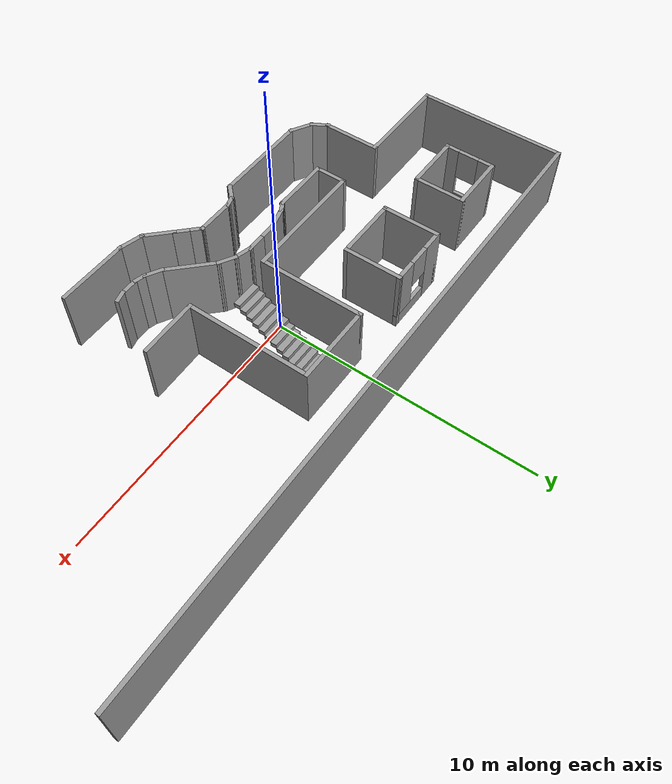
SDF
<sdf version="1.7">
 <model name="parcial_este_sii">
  <pose>1.2832 -0.231354 0 0 -0 0</pose>
  <link name="Stairs_0">
   <visual name="Stairs_0_Visual_0">
    <pose>-0.212158 3.06479 0.083333 0 -0 0</pose>
    <geometry><box><size>1 0.233333 0.166667</size></box></geometry>
    <material>
     <script><uri>file://media/materials/scripts/gazebo.material</uri><name>Gazebo/Grey</name></script>
     <ambient>1 1 1 1</ambient>
    </material>
    <meta><layer>0</layer></meta>
   </visual>
   <collision name="Stairs_0_Collision_0">
    <geometry><box><size>1 0.233333 0.166667</size></box></geometry>
    <pose>-0.212158 3.06479 0.083333 0 -0 0</pose>
   </collision>
   <visual name="Stairs_0_Visual_1">
    <pose>-0.212158 2.83145 0.25 0 -0 0</pose>
    <geometry><box><size>1 0.233333 0.166667</size></box></geometry>
    <material>
     <script><uri>file://media/materials/scripts/gazebo.material</uri><name>Gazebo/Grey</name></script>
     <ambient>1 1 1 1</ambient>
    </material>
    <meta><layer>0</layer></meta>
   </visual>
   <collision name="Stairs_0_Collision_1">
    <geometry><box><size>1 0.233333 0.166667</size></box></geometry>
    <pose>-0.212158 2.83145 0.25 0 -0 0</pose>
   </collision>
   <visual name="Stairs_0_Visual_2">
    <pose>-0.212158 2.59812 0.416667 0 -0 0</pose>
    <geometry><box><size>1 0.233333 0.166667</size></box></geometry>
    <material>
     <script><uri>file://media/materials/scripts/gazebo.material</uri><name>Gazebo/Grey</name></script>
     <ambient>1 1 1 1</ambient>
    </material>
    <meta><layer>0</layer></meta>
   </visual>
   <collision name="Stairs_0_Collision_2">
    <geometry><box><size>1 0.233333 0.166667</size></box></geometry>
    <pose>-0.212158 2.59812 0.416667 0 -0 0</pose>
   </collision>
   <visual name="Stairs_0_Visual_3">
    <pose>-0.212158 2.36479 0.583333 0 -0 0</pose>
    <geometry><box><size>1 0.233333 0.166667</size></box></geometry>
    <material>
     <script><uri>file://media/materials/scripts/gazebo.material</uri><name>Gazebo/Grey</name></script>
     <ambient>1 1 1 1</ambient>
    </material>
    <meta><layer>0</layer></meta>
   </visual>
   <collision name="Stairs_0_Collision_3">
    <geometry><box><size>1 0.233333 0.166667</size></box></geometry>
    <pose>-0.212158 2.36479 0.583333 0 -0 0</pose>
   </collision>
   <visual name="Stairs_0_Visual_4">
    <pose>-0.212158 2.13145 0.75 0 -0 0</pose>
    <geometry><box><size>1 0.233333 0.166667</size></box></geometry>
    <material>
     <script><uri>file://media/materials/scripts/gazebo.material</uri><name>Gazebo/Grey</name></script>
     <ambient>1 1 1 1</ambient>
    </material>
    <meta><layer>0</layer></meta>
   </visual>
   <collision name="Stairs_0_Collision_4">
    <geometry><box><size>1 0.233333 0.166667</size></box></geometry>
    <pose>-0.212158 2.13145 0.75 0 -0 0</pose>
   </collision>
   <visual name="Stairs_0_Visual_5">
    <pose>-0.212158 1.89812 0.916667 0 -0 0</pose>
    <geometry><box><size>1 0.233333 0.166667</size></box></geometry>
    <material>
     <script><uri>file://media/materials/scripts/gazebo.material</uri><name>Gazebo/Grey</name></script>
     <ambient>1 1 1 1</ambient>
    </material>
    <meta><layer>0</layer></meta>
   </visual>
   <collision name="Stairs_0_Collision_5">
    <geometry><box><size>1 0.233333 0.166667</size></box></geometry>
    <pose>-0.212158 1.89812 0.916667 0 -0 0</pose>
   </collision>
   <visual name="Stairs_0_Visual_6">
    <pose>-0.212158 1.66479 1.08333 0 -0 0</pose>
    <geometry><box><size>1 0.233333 0.166667</size></box></geometry>
    <material>
     <script><uri>file://media/materials/scripts/gazebo.material</uri><name>Gazebo/Grey</name></script>
     <ambient>1 1 1 1</ambient>
    </material>
    <meta><layer>0</layer></meta>
   </visual>
   <collision name="Stairs_0_Collision_6">
    <geometry><box><size>1 0.233333 0.166667</size></box></geometry>
    <pose>-0.212158 1.66479 1.08333 0 -0 0</pose>
   </collision>
   <visual name="Stairs_0_Visual_7">
    <pose>-0.212158 1.43145 1.25 0 -0 0</pose>
    <geometry><box><size>1 0.233333 0.166667</size></box></geometry>
    <material>
     <script><uri>file://media/materials/scripts/gazebo.material</uri><name>Gazebo/Grey</name></script>
     <ambient>1 1 1 1</ambient>
    </material>
    <meta><layer>0</layer></meta>
   </visual>
   <collision name="Stairs_0_Collision_7">
    <geometry><box><size>1 0.233333 0.166667</size></box></geometry>
    <pose>-0.212158 1.43145 1.25 0 -0 0</pose>
   </collision>
   <visual name="Stairs_0_Visual_8">
    <pose>-0.212158 1.19812 1.41667 0 -0 0</pose>
    <geometry><box><size>1 0.233333 0.166667</size></box></geometry>
    <material>
     <script><uri>file://media/materials/scripts/gazebo.material</uri><name>Gazebo/Grey</name></script>
     <ambient>1 1 1 1</ambient>
    </material>
    <meta><layer>0</layer></meta>
   </visual>
   <collision name="Stairs_0_Collision_8">
    <geometry><box><size>1 0.233333 0.166667</size></box></geometry>
    <pose>-0.212158 1.19812 1.41667 0 -0 0</pose>
   </collision>
   <visual name="Stairs_0_Visual_9">
    <pose>-0.212158 0.964787 1.58333 0 -0 0</pose>
    <geometry><box><size>1 0.233333 0.166667</size></box></geometry>
    <material>
     <script><uri>file://media/materials/scripts/gazebo.material</uri><name>Gazebo/Grey</name></script>
     <ambient>1 1 1 1</ambient>
    </material>
    <meta><layer>0</layer></meta>
   </visual>
   <collision name="Stairs_0_Collision_9">
    <geometry><box><size>1 0.233333 0.166667</size></box></geometry>
    <pose>-0.212158 0.964787 1.58333 0 -0 0</pose>
   </collision>
   <visual name="Stairs_0_Visual_10">
    <pose>-0.212158 0.731454 1.75 0 -0 0</pose>
    <geometry><box><size>1 0.233333 0.166667</size></box></geometry>
    <material>
     <script><uri>file://media/materials/scripts/gazebo.material</uri><name>Gazebo/Grey</name></script>
     <ambient>1 1 1 1</ambient>
    </material>
    <meta><layer>0</layer></meta>
   </visual>
   <collision name="Stairs_0_Collision_10">
    <geometry><box><size>1 0.233333 0.166667</size></box></geometry>
    <pose>-0.212158 0.731454 1.75 0 -0 0</pose>
   </collision>
   <visual name="Stairs_0_Visual_11">
    <pose>-0.212158 0.49812 1.91667 0 -0 0</pose>
    <geometry><box><size>1 0.233333 0.166667</size></box></geometry>
    <material>
     <script><uri>file://media/materials/scripts/gazebo.material</uri><name>Gazebo/Grey</name></script>
     <ambient>1 1 1 1</ambient>
    </material>
    <meta><layer>0</layer></meta>
   </visual>
   <collision name="Stairs_0_Collision_11">
    <geometry><box><size>1 0.233333 0.166667</size></box></geometry>
    <pose>-0.212158 0.49812 1.91667 0 -0 0</pose>
   </collision>
   <visual name="Stairs_0_Visual_12">
    <pose>-0.212158 0.264787 2.08333 0 -0 0</pose>
    <geometry><box><size>1 0.233333 0.166667</size></box></geometry>
    <material>
     <script><uri>file://media/materials/scripts/gazebo.material</uri><name>Gazebo/Grey</name></script>
     <ambient>1 1 1 1</ambient>
    </material>
    <meta><layer>0</layer></meta>
   </visual>
   <collision name="Stairs_0_Collision_12">
    <geometry><box><size>1 0.233333 0.166667</size></box></geometry>
    <pose>-0.212158 0.264787 2.08333 0 -0 0</pose>
   </collision>
   <visual name="Stairs_0_Visual_13">
    <pose>-0.212158 0.031454 2.25 0 -0 0</pose>
    <geometry><box><size>1 0.233333 0.166667</size></box></geometry>
    <material>
     <script><uri>file://media/materials/scripts/gazebo.material</uri><name>Gazebo/Grey</name></script>
     <ambient>1 1 1 1</ambient>
    </material>
    <meta><layer>0</layer></meta>
   </visual>
   <collision name="Stairs_0_Collision_13">
    <geometry><box><size>1 0.233333 0.166667</size></box></geometry>
    <pose>-0.212158 0.031454 2.25 0 -0 0</pose>
   </collision>
   <visual name="Stairs_0_Visual_14">
    <pose>-0.212158 -0.20188 2.41667 0 -0 0</pose>
    <geometry><box><size>1 0.233333 0.166667</size></box></geometry>
    <material>
     <script><uri>file://media/materials/scripts/gazebo.material</uri><name>Gazebo/Grey</name></script>
     <ambient>1 1 1 1</ambient>
    </material>
    <meta><layer>0</layer></meta>
   </visual>
   <collision name="Stairs_0_Collision_14">
    <geometry><box><size>1 0.233333 0.166667</size></box></geometry>
    <pose>-0.212158 -0.20188 2.41667 0 -0 0</pose>
   </collision>
  </link>
  <link name="Wall_100">
   <collision name="Wall_100_Collision">
    <geometry><box><size>0.75 0.15 2.5</size></box></geometry>
    <pose>0 0 1.25 0 -0 0</pose>
   </collision>
   <visual name="Wall_100_Visual">
    <pose>0 0 1.25 0 -0 0</pose>
    <geometry><box><size>0.75 0.15 2.5</size></box></geometry>
    <material>
     <script><uri>file://media/materials/scripts/gazebo.material</uri><name>Gazebo/Grey</name></script>
     <ambient>1 1 1 1</ambient>
    </material>
    <meta><layer>0</layer></meta>
   </visual>
   <pose>-1.171 -3.69295 0 0 -0 -0.785398</pose>
  </link>
  <link name="Wall_101">
   <collision name="Wall_101_Collision">
    <geometry><box><size>1.25 0.15 2.5</size></box></geometry>
    <pose>0 0 1.25 0 -0 0</pose>
   </collision>
   <visual name="Wall_101_Visual">
    <pose>0 0 1.25 0 -0 0</pose>
    <geometry><box><size>1.25 0.15 2.5</size></box></geometry>
    <material>
     <script><uri>file://media/materials/scripts/gazebo.material</uri><name>Gazebo/Grey</name></script>
     <ambient>1 1 1 1</ambient>
    </material>
    <meta><layer>0</layer></meta>
   </visual>
   <pose>-0.569956 -4.294 0 0 -0 -0.785398</pose>
  </link>
  <link name="Wall_102">
   <collision name="Wall_102_Collision">
    <geometry><box><size>1 0.15 2.5</size></box></geometry>
    <pose>0 0 1.25 0 -0 0</pose>
   </collision>
   <visual name="Wall_102_Visual">
    <pose>0 0 1.25 0 -0 0</pose>
    <geometry><box><size>1 0.15 2.5</size></box></geometry>
    <material>
     <script><uri>file://media/materials/scripts/gazebo.material</uri><name>Gazebo/Grey</name></script>
     <ambient>1 1 1 1</ambient>
    </material>
    <meta><layer>0</layer></meta>
   </visual>
   <pose>0.229471 -4.7929 0 0 -0 -0.261799</pose>
  </link>
  <link name="Wall_103">
   <collision name="Wall_103_Collision">
    <geometry><box><size>2.75 0.15 2.5</size></box></geometry>
    <pose>0 0 1.25 0 -0 0</pose>
   </collision>
   <visual name="Wall_103_Visual">
    <pose>0 0 1.25 0 -0 0</pose>
    <geometry><box><size>2.75 0.15 2.5</size></box></geometry>
    <material>
     <script><uri>file://media/materials/scripts/gazebo.material</uri><name>Gazebo/Grey</name></script>
     <ambient>1 1 1 1</ambient>
    </material>
    <meta><layer>0</layer></meta>
   </visual>
   <pose>1.93999 -4.9029 0 0 -0 0</pose>
  </link>
  <link name="Wall_118">
   <collision name="Wall_118_Collision">
    <geometry><box><size>24.0772 0.15 2.5</size></box></geometry>
    <pose>0 0 1.25 0 -0 0</pose>
   </collision>
   <visual name="Wall_118_Visual">
    <pose>0 0 1.25 0 -0 0</pose>
    <geometry><box><size>24.0772 0.15 2.5</size></box></geometry>
    <material>
     <script><uri>file://media/materials/scripts/gazebo.material</uri><name>Gazebo/Grey</name></script>
     <ambient>1 1 1 1</ambient>
    </material>
    <meta><layer>0</layer></meta>
   </visual>
   <pose>-0.01548 4.91334 0 0 -0 -3.14018</pose>
  </link>
  <link name="Wall_48">
   <collision name="Wall_48_Collision">
    <geometry><box><size>0.5 0.15 2.5</size></box></geometry>
    <pose>0 0 1.25 0 -0 0</pose>
   </collision>
   <visual name="Wall_48_Visual">
    <pose>0 0 1.25 0 -0 0</pose>
    <geometry><box><size>0.5 0.15 2.5</size></box></geometry>
    <material>
     <script><uri>file://media/materials/scripts/gazebo.material</uri><name>Gazebo/Grey</name></script>
     <ambient>1 1 1 1</ambient>
    </material>
    <meta><layer>0</layer></meta>
   </visual>
   <pose>2.18494 -3.46395 0 0 -0 -2.87979</pose>
  </link>
  <link name="Wall_49">
   <collision name="Wall_49_Collision">
    <geometry><box><size>0.75 0.15 2.5</size></box></geometry>
    <pose>0 0 1.25 0 -0 0</pose>
   </collision>
   <visual name="Wall_49_Visual">
    <pose>0 0 1.25 0 -0 0</pose>
    <geometry><box><size>0.75 0.15 2.5</size></box></geometry>
    <material>
     <script><uri>file://media/materials/scripts/gazebo.material</uri><name>Gazebo/Grey</name></script>
     <ambient>1 1 1 1</ambient>
    </material>
    <meta><layer>0</layer></meta>
   </visual>
   <pose>1.7159 -3.50924 0 0 -0 3.14159</pose>
  </link>
  <link name="Wall_50">
   <collision name="Wall_50_Collision">
    <geometry><box><size>0.5 0.15 2.5</size></box></geometry>
    <pose>0 0 1.25 0 -0 0</pose>
   </collision>
   <visual name="Wall_50_Visual">
    <pose>0 0 1.25 0 -0 0</pose>
    <geometry><box><size>0.5 0.15 2.5</size></box></geometry>
    <material>
     <script><uri>file://media/materials/scripts/gazebo.material</uri><name>Gazebo/Grey</name></script>
     <ambient>1 1 1 1</ambient>
    </material>
    <meta><layer>0</layer></meta>
   </visual>
   <pose>1.24686 -3.46395 0 0 -0 2.87979</pose>
  </link>
  <link name="Wall_51">
   <collision name="Wall_51_Collision">
    <geometry><box><size>0.75 0.15 2.5</size></box></geometry>
    <pose>0 0 1.25 0 -0 0</pose>
   </collision>
   <visual name="Wall_51_Visual">
    <pose>0 0 1.25 0 -0 0</pose>
    <geometry><box><size>0.75 0.15 2.5</size></box></geometry>
    <material>
     <script><uri>file://media/materials/scripts/gazebo.material</uri><name>Gazebo/Grey</name></script>
     <ambient>1 1 1 1</ambient>
    </material>
    <meta><layer>0</layer></meta>
   </visual>
   <pose>0.818017 -3.26865 0 0 -0 2.61799</pose>
  </link>
  <link name="Wall_52">
   <collision name="Wall_52_Collision">
    <geometry><box><size>2 0.15 2.5</size></box></geometry>
    <pose>0 0 1.25 0 -0 0</pose>
   </collision>
   <visual name="Wall_52_Visual">
    <pose>0 0 1.25 0 -0 0</pose>
    <geometry><box><size>2 0.15 2.5</size></box></geometry>
    <material>
     <script><uri>file://media/materials/scripts/gazebo.material</uri><name>Gazebo/Grey</name></script>
     <ambient>1 1 1 1</ambient>
    </material>
    <meta><layer>0</layer></meta>
   </visual>
   <pose>-0.095864 -2.46458 0 0 -0 2.35619</pose>
  </link>
  <link name="Wall_55">
   <collision name="Wall_55_Collision">
    <geometry><box><size>0.75 0.15 2.5</size></box></geometry>
    <pose>0 0 1.25 0 -0 0</pose>
   </collision>
   <visual name="Wall_55_Visual">
    <pose>0 0 1.25 0 -0 0</pose>
    <geometry><box><size>0.75 0.15 2.5</size></box></geometry>
    <material>
     <script><uri>file://media/materials/scripts/gazebo.material</uri><name>Gazebo/Grey</name></script>
     <ambient>1 1 1 1</ambient>
    </material>
    <meta><layer>0</layer></meta>
   </visual>
   <pose>-1.00974 -1.66051 0 0 -0 2.61799</pose>
  </link>
  <link name="Wall_56">
   <collision name="Wall_56_Collision">
    <geometry><box><size>0.75 0.15 2.5</size></box></geometry>
    <pose>0 0 1.25 0 -0 0</pose>
   </collision>
   <visual name="Wall_56_Visual">
    <pose>0 0 1.25 0 -0 0</pose>
    <geometry><box><size>0.75 0.15 2.5</size></box></geometry>
    <material>
     <script><uri>file://media/materials/scripts/gazebo.material</uri><name>Gazebo/Grey</name></script>
     <ambient>1 1 1 1</ambient>
    </material>
    <meta><layer>0</layer></meta>
   </visual>
   <pose>-1.55933 -1.43286 0 0 -0 2.87979</pose>
  </link>
  <link name="Wall_57">
   <collision name="Wall_57_Collision">
    <geometry><box><size>0.75 0.15 2.5</size></box></geometry>
    <pose>0 0 1.25 0 -0 0</pose>
   </collision>
   <visual name="Wall_57_Visual">
    <pose>0 0 1.25 0 -0 0</pose>
    <geometry><box><size>0.75 0.15 2.5</size></box></geometry>
    <material>
     <script><uri>file://media/materials/scripts/gazebo.material</uri><name>Gazebo/Grey</name></script>
     <ambient>1 1 1 1</ambient>
    </material>
    <meta><layer>0</layer></meta>
   </visual>
   <pose>-2.14911 -1.35522 0 0 -0 3.14159</pose>
  </link>
  <link name="Wall_58">
   <collision name="Wall_58_Collision">
    <geometry><box><size>0.75 0.15 2.5</size></box></geometry>
    <pose>0 0 1.25 0 -0 0</pose>
   </collision>
   <visual name="Wall_58_Visual">
    <pose>0 0 1.25 0 -0 0</pose>
    <geometry><box><size>0.75 0.15 2.5</size></box></geometry>
    <material>
     <script><uri>file://media/materials/scripts/gazebo.material</uri><name>Gazebo/Grey</name></script>
     <ambient>1 1 1 1</ambient>
    </material>
    <meta><layer>0</layer></meta>
   </visual>
   <pose>-2.74911 -1.35522 0 0 -0 3.14159</pose>
  </link>
  <link name="Wall_59">
   <collision name="Wall_59_Collision">
    <geometry><box><size>1 0.15 2.5</size></box></geometry>
    <pose>0 0 1.25 0 -0 0</pose>
   </collision>
   <visual name="Wall_59_Visual">
    <pose>0 0 1.25 0 -0 0</pose>
    <geometry><box><size>1 0.15 2.5</size></box></geometry>
    <material>
     <script><uri>file://media/materials/scripts/gazebo.material</uri><name>Gazebo/Grey</name></script>
     <ambient>1 1 1 1</ambient>
    </material>
    <meta><layer>0</layer></meta>
   </visual>
   <pose>-3.45963 -1.46521 0 0 -0 -2.87979</pose>
  </link>
  <link name="Wall_60">
   <collision name="Wall_60_Collision">
    <geometry><box><size>0.5 0.15 2.5</size></box></geometry>
    <pose>0 0 1.25 0 -0 0</pose>
   </collision>
   <visual name="Wall_60_Visual">
    <pose>0 0 1.25 0 -0 0</pose>
    <geometry><box><size>0.5 0.15 2.5</size></box></geometry>
    <material>
     <script><uri>file://media/materials/scripts/gazebo.material</uri><name>Gazebo/Grey</name></script>
     <ambient>1 1 1 1</ambient>
    </material>
    <meta><layer>0</layer></meta>
   </visual>
   <pose>-4.0217 -1.66271 0 0 -0 -2.61799</pose>
  </link>
  <link name="Wall_61">
   <collision name="Wall_61_Collision">
    <geometry><box><size>2.25 0.15 2.5</size></box></geometry>
    <pose>0 0 1.25 0 -0 0</pose>
   </collision>
   <visual name="Wall_61_Visual">
    <pose>0 0 1.25 0 -0 0</pose>
    <geometry><box><size>2.25 0.15 2.5</size></box></geometry>
    <material>
     <script><uri>file://media/materials/scripts/gazebo.material</uri><name>Gazebo/Grey</name></script>
     <ambient>1 1 1 1</ambient>
    </material>
    <meta><layer>0</layer></meta>
   </visual>
   <pose>-5.22325 -1.75021 0 0 -0 3.14159</pose>
  </link>
  <link name="Wall_62">
   <collision name="Wall_62_Collision">
    <geometry><box><size>1.25 0.15 2.5</size></box></geometry>
    <pose>0 0 1.25 0 -0 0</pose>
   </collision>
   <visual name="Wall_62_Visual">
    <pose>0 0 1.25 0 -0 0</pose>
    <geometry><box><size>1.25 0.15 2.5</size></box></geometry>
    <material>
     <script><uri>file://media/materials/scripts/gazebo.material</uri><name>Gazebo/Grey</name></script>
     <ambient>1 1 1 1</ambient>
    </material>
    <meta><layer>0</layer></meta>
   </visual>
   <pose>-6.27325 -1.20021 0 0 -0 1.5708</pose>
  </link>
  <link name="Wall_63">
   <collision name="Wall_63_Collision">
    <geometry><box><size>4.75 0.15 2.5</size></box></geometry>
    <pose>0 0 1.25 0 -0 0</pose>
   </collision>
   <visual name="Wall_63_Visual">
    <pose>0 0 1.25 0 -0 0</pose>
    <geometry><box><size>4.75 0.15 2.5</size></box></geometry>
    <material>
     <script><uri>file://media/materials/scripts/gazebo.material</uri><name>Gazebo/Grey</name></script>
     <ambient>1 1 1 1</ambient>
    </material>
    <meta><layer>0</layer></meta>
   </visual>
   <pose>-3.97325 -0.650212 0 0 -0 0</pose>
  </link>
  <link name="Wall_65">
   <collision name="Wall_65_Collision">
    <geometry><box><size>4 0.15 2.5</size></box></geometry>
    <pose>0 0 1.25 0 -0 0</pose>
   </collision>
   <visual name="Wall_65_Visual">
    <pose>0 0 1.25 0 -0 0</pose>
    <geometry><box><size>4 0.15 2.5</size></box></geometry>
    <material>
     <script><uri>file://media/materials/scripts/gazebo.material</uri><name>Gazebo/Grey</name></script>
     <ambient>1 1 1 1</ambient>
    </material>
    <meta><layer>0</layer></meta>
   </visual>
   <pose>-1.67325 1.27479 0 0 -0 1.5708</pose>
  </link>
  <link name="Wall_66">
   <collision name="Wall_66_Collision">
    <geometry><box><size>3 0.15 2.5</size></box></geometry>
    <pose>0 0 1.25 0 -0 0</pose>
   </collision>
   <visual name="Wall_66_Visual">
    <pose>0 0 1.25 0 -0 0</pose>
    <geometry><box><size>3 0.15 2.5</size></box></geometry>
    <material>
     <script><uri>file://media/materials/scripts/gazebo.material</uri><name>Gazebo/Grey</name></script>
     <ambient>1 1 1 1</ambient>
    </material>
    <meta><layer>0</layer></meta>
   </visual>
   <pose>-0.248254 3.19979 0 0 -0 0</pose>
  </link>
  <link name="Wall_67">
   <collision name="Wall_67_Collision">
    <geometry><box><size>4.75 0.15 2.5</size></box></geometry>
    <pose>0 0 1.25 0 -0 0</pose>
   </collision>
   <visual name="Wall_67_Visual">
    <pose>0 0 1.25 0 -0 0</pose>
    <geometry><box><size>4.75 0.15 2.5</size></box></geometry>
    <material>
     <script><uri>file://media/materials/scripts/gazebo.material</uri><name>Gazebo/Grey</name></script>
     <ambient>1 1 1 1</ambient>
    </material>
    <meta><layer>0</layer></meta>
   </visual>
   <pose>1.17675 0.899788 0 0 -0 -1.5708</pose>
  </link>
  <link name="Wall_68">
   <collision name="Wall_68_Collision">
    <geometry><box><size>2.26563 0.15 2.5</size></box></geometry>
    <pose>0 0 1.25 0 -0 0</pose>
   </collision>
   <visual name="Wall_68_Visual">
    <pose>0 0 1.25 0 -0 0</pose>
    <geometry><box><size>2.26563 0.15 2.5</size></box></geometry>
    <material>
     <script><uri>file://media/materials/scripts/gazebo.material</uri><name>Gazebo/Grey</name></script>
     <ambient>1 1 1 1</ambient>
    </material>
    <meta><layer>0</layer></meta>
   </visual>
   <pose>2.2343 -1.37691 0 0 -0 0.02203</pose>
  </link>
  <link name="Wall_79">
   <collision name="Wall_79_Collision">
    <geometry><box><size>2.25 0.15 2.5</size></box></geometry>
    <pose>0 0 1.25 0 -0 0</pose>
   </collision>
   <visual name="Wall_79_Visual">
    <pose>0 0 1.25 0 -0 0</pose>
    <geometry><box><size>2.25 0.15 2.5</size></box></geometry>
    <material>
     <script><uri>file://media/materials/scripts/gazebo.material</uri><name>Gazebo/Grey</name></script>
     <ambient>1 1 1 1</ambient>
    </material>
    <meta><layer>0</layer></meta>
   </visual>
   <pose>-6.03245 2.34348 0 0 -0 1.5708</pose>
  </link>
  <link name="Wall_80">
   <pose>-4.85745 3.39348 0 0 -0 0</pose>
   <visual name="Wall_80_Visual_0">
    <pose>-0.825469 0 1.25 0 -0 0</pose>
    <geometry><box><size>0.849062 0.15 2.5</size></box></geometry>
    <material>
     <script><uri>file://media/materials/scripts/gazebo.material</uri><name>Gazebo/Grey</name></script>
     <ambient>1 1 1 1</ambient>
    </material>
    <meta><layer>0</layer></meta>
   </visual>
   <collision name="Wall_80_Collision_0">
    <geometry><box><size>0.849062 0.15 2.5</size></box></geometry>
    <pose>-0.825469 0 1.25 0 -0 0</pose>
   </collision>
   <visual name="Wall_80_Visual_1">
    <pose>0.424531 0 0.25 0 -0 0</pose>
    <geometry><box><size>1.65094 0.15 0.5</size></box></geometry>
    <material>
     <script><uri>file://media/materials/scripts/gazebo.material</uri><name>Gazebo/Grey</name></script>
     <ambient>1 1 1 1</ambient>
    </material>
    <meta><layer>0</layer></meta>
   </visual>
   <collision name="Wall_80_Collision_1">
    <geometry><box><size>1.65094 0.15 0.5</size></box></geometry>
    <pose>0.424531 0 0.25 0 -0 0</pose>
   </collision>
   <visual name="Wall_80_Visual_2">
    <pose>0.824531 0 1.5 0 -0 0</pose>
    <geometry><box><size>0.850938 0.15 2</size></box></geometry>
    <material>
     <script><uri>file://media/materials/scripts/gazebo.material</uri><name>Gazebo/Grey</name></script>
     <ambient>1 1 1 1</ambient>
    </material>
    <meta><layer>0</layer></meta>
   </visual>
   <collision name="Wall_80_Collision_2">
    <geometry><box><size>0.850938 0.15 2</size></box></geometry>
    <pose>0.824531 0 1.5 0 -0 0</pose>
   </collision>
   <visual name="Wall_80_Visual_3">
    <pose>-0.000938 0 1.9 0 -0 0</pose>
    <geometry><box><size>0.8 0.15 1.2</size></box></geometry>
    <material>
     <script><uri>file://media/materials/scripts/gazebo.material</uri><name>Gazebo/Grey</name></script>
     <ambient>1 1 1 1</ambient>
    </material>
    <meta><layer>0</layer></meta>
   </visual>
   <collision name="Wall_80_Collision_3">
    <geometry><box><size>0.8 0.15 1.2</size></box></geometry>
    <pose>-0.000938 0 1.9 0 -0 0</pose>
   </collision>
  </link>
  <link name="Wall_81">
   <collision name="Wall_81_Collision">
    <geometry><box><size>2.25 0.15 2.5</size></box></geometry>
    <pose>0 0 1.25 0 -0 0</pose>
   </collision>
   <visual name="Wall_81_Visual">
    <pose>0 0 1.25 0 -0 0</pose>
    <geometry><box><size>2.25 0.15 2.5</size></box></geometry>
    <material>
     <script><uri>file://media/materials/scripts/gazebo.material</uri><name>Gazebo/Grey</name></script>
     <ambient>1 1 1 1</ambient>
    </material>
    <meta><layer>0</layer></meta>
   </visual>
   <pose>-3.68246 2.34348 0 0 -0 -1.5708</pose>
  </link>
  <link name="Wall_82">
   <collision name="Wall_82_Collision">
    <geometry><box><size>2.5 0.15 2.5</size></box></geometry>
    <pose>0 0 1.25 0 -0 0</pose>
   </collision>
   <visual name="Wall_82_Visual">
    <pose>0 0 1.25 0 -0 0</pose>
    <geometry><box><size>2.5 0.15 2.5</size></box></geometry>
    <material>
     <script><uri>file://media/materials/scripts/gazebo.material</uri><name>Gazebo/Grey</name></script>
     <ambient>1 1 1 1</ambient>
    </material>
    <meta><layer>0</layer></meta>
   </visual>
   <pose>-4.85745 1.29348 0 0 -0 3.14159</pose>
  </link>
  <link name="Wall_84">
   <pose>-10.0027 2.34091 0 0 -0 1.5708</pose>
   <visual name="Wall_84_Visual_0">
    <pose>-0.712228 0 1.25 0 -0 0</pose>
    <geometry><box><size>0.575544 0.15 2.5</size></box></geometry>
    <material>
     <script><uri>file://media/materials/scripts/gazebo.material</uri><name>Gazebo/Grey</name></script>
     <ambient>1 1 1 1</ambient>
    </material>
    <meta><layer>0</layer></meta>
   </visual>
   <collision name="Wall_84_Collision_0">
    <geometry><box><size>0.575544 0.15 2.5</size></box></geometry>
    <pose>-0.712228 0 1.25 0 -0 0</pose>
   </collision>
   <visual name="Wall_84_Visual_1">
    <pose>0.287772 0 0.25 0 -0 0</pose>
    <geometry><box><size>1.42446 0.15 0.5</size></box></geometry>
    <material>
     <script><uri>file://media/materials/scripts/gazebo.material</uri><name>Gazebo/Grey</name></script>
     <ambient>1 1 1 1</ambient>
    </material>
    <meta><layer>0</layer></meta>
   </visual>
   <collision name="Wall_84_Collision_1">
    <geometry><box><size>1.42446 0.15 0.5</size></box></geometry>
    <pose>0.287772 0 0.25 0 -0 0</pose>
   </collision>
   <visual name="Wall_84_Visual_2">
    <pose>0.687772 0 1.5 0 -0 0</pose>
    <geometry><box><size>0.624456 0.15 2</size></box></geometry>
    <material>
     <script><uri>file://media/materials/scripts/gazebo.material</uri><name>Gazebo/Grey</name></script>
     <ambient>1 1 1 1</ambient>
    </material>
    <meta><layer>0</layer></meta>
   </visual>
   <collision name="Wall_84_Collision_2">
    <geometry><box><size>0.624456 0.15 2</size></box></geometry>
    <pose>0.687772 0 1.5 0 -0 0</pose>
   </collision>
   <visual name="Wall_84_Visual_3">
    <pose>-0.024456 0 1.9 0 -0 0</pose>
    <geometry><box><size>0.8 0.15 1.2</size></box></geometry>
    <material>
     <script><uri>file://media/materials/scripts/gazebo.material</uri><name>Gazebo/Grey</name></script>
     <ambient>1 1 1 1</ambient>
    </material>
    <meta><layer>0</layer></meta>
   </visual>
   <collision name="Wall_84_Collision_3">
    <geometry><box><size>0.8 0.15 1.2</size></box></geometry>
    <pose>-0.024456 0 1.9 0 -0 0</pose>
   </collision>
  </link>
  <link name="Wall_85">
   <collision name="Wall_85_Collision">
    <geometry><box><size>2.25 0.15 2.5</size></box></geometry>
    <pose>0 0 1.25 0 -0 0</pose>
   </collision>
   <visual name="Wall_85_Visual">
    <pose>0 0 1.25 0 -0 0</pose>
    <geometry><box><size>2.25 0.15 2.5</size></box></geometry>
    <material>
     <script><uri>file://media/materials/scripts/gazebo.material</uri><name>Gazebo/Grey</name></script>
     <ambient>1 1 1 1</ambient>
    </material>
    <meta><layer>0</layer></meta>
   </visual>
   <pose>-8.9527 3.26591 0 0 -0 0</pose>
  </link>
  <link name="Wall_86">
   <collision name="Wall_86_Collision">
    <geometry><box><size>2 0.15 2.5</size></box></geometry>
    <pose>0 0 1.25 0 -0 0</pose>
   </collision>
   <visual name="Wall_86_Visual">
    <pose>0 0 1.25 0 -0 0</pose>
    <geometry><box><size>2 0.15 2.5</size></box></geometry>
    <material>
     <script><uri>file://media/materials/scripts/gazebo.material</uri><name>Gazebo/Grey</name></script>
     <ambient>1 1 1 1</ambient>
    </material>
    <meta><layer>0</layer></meta>
   </visual>
   <pose>-7.9027 2.34091 0 0 -0 -1.5708</pose>
  </link>
  <link name="Wall_87">
   <collision name="Wall_87_Collision">
    <geometry><box><size>2.25 0.15 2.5</size></box></geometry>
    <pose>0 0 1.25 0 -0 0</pose>
   </collision>
   <visual name="Wall_87_Visual">
    <pose>0 0 1.25 0 -0 0</pose>
    <geometry><box><size>2.25 0.15 2.5</size></box></geometry>
    <material>
     <script><uri>file://media/materials/scripts/gazebo.material</uri><name>Gazebo/Grey</name></script>
     <ambient>1 1 1 1</ambient>
    </material>
    <meta><layer>0</layer></meta>
   </visual>
   <pose>-8.9527 1.41591 0 0 -0 3.14159</pose>
  </link>
  <link name="Wall_89">
   <collision name="Wall_89_Collision">
    <geometry><box><size>5.75 0.15 2.5</size></box></geometry>
    <pose>0 0 1.25 0 -0 0</pose>
   </collision>
   <visual name="Wall_89_Visual">
    <pose>0 0 1.25 0 -0 0</pose>
    <geometry><box><size>5.75 0.15 2.5</size></box></geometry>
    <material>
     <script><uri>file://media/materials/scripts/gazebo.material</uri><name>Gazebo/Grey</name></script>
     <ambient>1 1 1 1</ambient>
    </material>
    <meta><layer>0</layer></meta>
   </visual>
   <pose>-11.9791 2.09643 0 0 -0 -1.5708</pose>
  </link>
  <link name="Wall_90">
   <collision name="Wall_90_Collision">
    <geometry><box><size>3.75 0.15 2.5</size></box></geometry>
    <pose>0 0 1.25 0 -0 0</pose>
   </collision>
   <visual name="Wall_90_Visual">
    <pose>0 0 1.25 0 -0 0</pose>
    <geometry><box><size>3.75 0.15 2.5</size></box></geometry>
    <material>
     <script><uri>file://media/materials/scripts/gazebo.material</uri><name>Gazebo/Grey</name></script>
     <ambient>1 1 1 1</ambient>
    </material>
    <meta><layer>0</layer></meta>
   </visual>
   <pose>-10.1791 -0.703571 0 0 -0 0</pose>
  </link>
  <link name="Wall_92">
   <collision name="Wall_92_Collision">
    <geometry><box><size>2.25 0.15 2.5</size></box></geometry>
    <pose>0 0 1.25 0 -0 0</pose>
   </collision>
   <visual name="Wall_92_Visual">
    <pose>0 0 1.25 0 -0 0</pose>
    <geometry><box><size>2.25 0.15 2.5</size></box></geometry>
    <material>
     <script><uri>file://media/materials/scripts/gazebo.material</uri><name>Gazebo/Grey</name></script>
     <ambient>1 1 1 1</ambient>
    </material>
    <meta><layer>0</layer></meta>
   </visual>
   <pose>-8.37908 -1.75357 0 0 -0 -1.5708</pose>
  </link>
  <link name="Wall_93">
   <collision name="Wall_93_Collision">
    <geometry><box><size>0.75 0.15 2.5</size></box></geometry>
    <pose>0 0 1.25 0 -0 0</pose>
   </collision>
   <visual name="Wall_93_Visual">
    <pose>0 0 1.25 0 -0 0</pose>
    <geometry><box><size>0.75 0.15 2.5</size></box></geometry>
    <material>
     <script><uri>file://media/materials/scripts/gazebo.material</uri><name>Gazebo/Grey</name></script>
     <ambient>1 1 1 1</ambient>
    </material>
    <meta><layer>0</layer></meta>
   </visual>
   <pose>-8.22908 -3.06338 0 0 -0 -1.0472</pose>
  </link>
  <link name="Wall_94">
   <collision name="Wall_94_Collision">
    <geometry><box><size>1 0.15 2.5</size></box></geometry>
    <pose>0 0 1.25 0 -0 0</pose>
   </collision>
   <visual name="Wall_94_Visual">
    <pose>0 0 1.25 0 -0 0</pose>
    <geometry><box><size>1 0.15 2.5</size></box></geometry>
    <material>
     <script><uri>file://media/materials/scripts/gazebo.material</uri><name>Gazebo/Grey</name></script>
     <ambient>1 1 1 1</ambient>
    </material>
    <meta><layer>0</layer></meta>
   </visual>
   <pose>-7.71101 -3.53569 0 0 -0 -0.523599</pose>
  </link>
  <link name="Wall_95">
   <collision name="Wall_95_Collision">
    <geometry><box><size>3.75 0.15 2.5</size></box></geometry>
    <pose>0 0 1.25 0 -0 0</pose>
   </collision>
   <visual name="Wall_95_Visual">
    <pose>0 0 1.25 0 -0 0</pose>
    <geometry><box><size>3.75 0.15 2.5</size></box></geometry>
    <material>
     <script><uri>file://media/materials/scripts/gazebo.material</uri><name>Gazebo/Grey</name></script>
     <ambient>1 1 1 1</ambient>
    </material>
    <meta><layer>0</layer></meta>
   </visual>
   <pose>-5.54295 -3.74819 0 0 -0 0</pose>
  </link>
  <link name="Wall_96">
   <collision name="Wall_96_Collision">
    <geometry><box><size>0.75 0.15 2.5</size></box></geometry>
    <pose>0 0 1.25 0 -0 0</pose>
   </collision>
   <visual name="Wall_96_Visual">
    <pose>0 0 1.25 0 -0 0</pose>
    <geometry><box><size>0.75 0.15 2.5</size></box></geometry>
    <material>
     <script><uri>file://media/materials/scripts/gazebo.material</uri><name>Gazebo/Grey</name></script>
     <ambient>1 1 1 1</ambient>
    </material>
    <meta><layer>0</layer></meta>
   </visual>
   <pose>-3.53082 -3.53605 0 0 -0 0.785398</pose>
  </link>
  <link name="Wall_97">
   <collision name="Wall_97_Collision">
    <geometry><box><size>0.5 0.15 2.5</size></box></geometry>
    <pose>0 0 1.25 0 -0 0</pose>
   </collision>
   <visual name="Wall_97_Visual">
    <pose>0 0 1.25 0 -0 0</pose>
    <geometry><box><size>0.5 0.15 2.5</size></box></geometry>
    <material>
     <script><uri>file://media/materials/scripts/gazebo.material</uri><name>Gazebo/Grey</name></script>
     <ambient>1 1 1 1</ambient>
    </material>
    <meta><layer>0</layer></meta>
   </visual>
   <pose>-3.14965 -3.27863 0 0 -0 0.261799</pose>
  </link>
  <link name="Wall_98">
   <collision name="Wall_98_Collision">
    <geometry><box><size>1.5 0.15 2.5</size></box></geometry>
    <pose>0 0 1.25 0 -0 0</pose>
   </collision>
   <visual name="Wall_98_Visual">
    <pose>0 0 1.25 0 -0 0</pose>
    <geometry><box><size>1.5 0.15 2.5</size></box></geometry>
    <material>
     <script><uri>file://media/materials/scripts/gazebo.material</uri><name>Gazebo/Grey</name></script>
     <ambient>1 1 1 1</ambient>
    </material>
    <meta><layer>0</layer></meta>
   </visual>
   <pose>-2.30562 -3.23334 0 0 -0 0</pose>
  </link>
  <link name="Wall_99">
   <collision name="Wall_99_Collision">
    <geometry><box><size>0.5 0.15 2.5</size></box></geometry>
    <pose>0 0 1.25 0 -0 0</pose>
   </collision>
   <visual name="Wall_99_Visual">
    <pose>0 0 1.25 0 -0 0</pose>
    <geometry><box><size>0.5 0.15 2.5</size></box></geometry>
    <material>
     <script><uri>file://media/materials/scripts/gazebo.material</uri><name>Gazebo/Grey</name></script>
     <ambient>1 1 1 1</ambient>
    </material>
    <meta><layer>0</layer></meta>
   </visual>
   <pose>-1.50687 -3.35708 0 0 -0 -0.785398</pose>
  </link>
  <static>1</static>
 </model>
</sdf>
